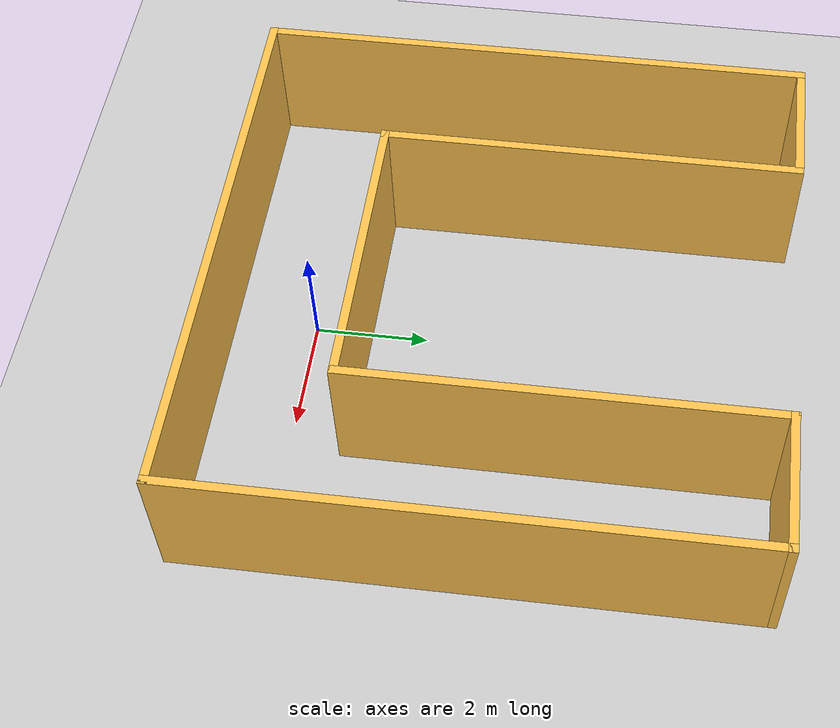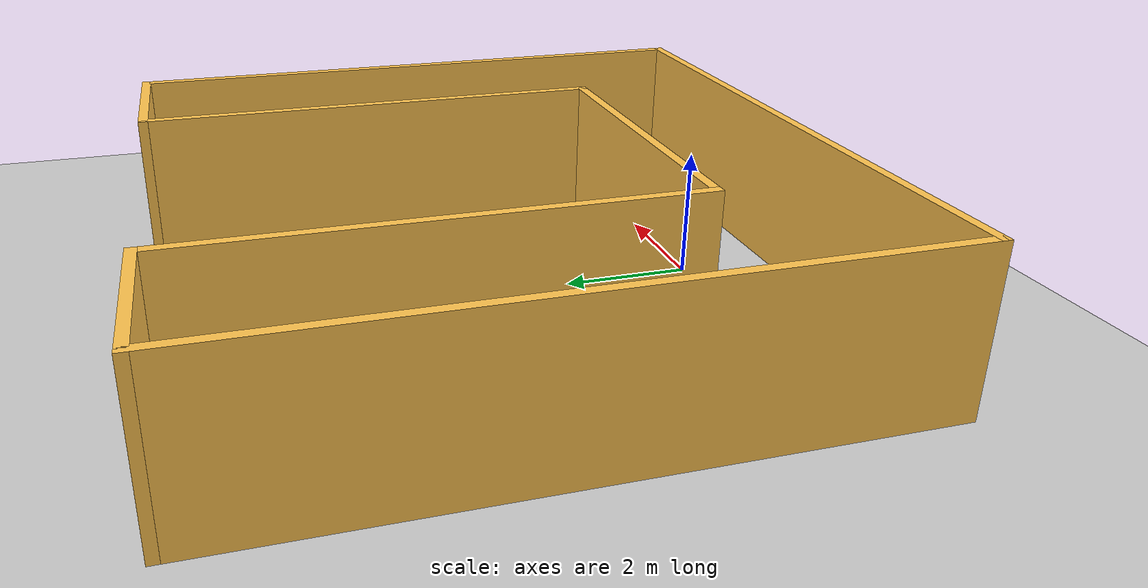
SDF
<sdf version="1.6">
 <world name="default">
  <light name="sun" type="directional">
   <pose>0 0 10 0 -0 0</pose>
   <diffuse>0.8 0.8 0.8 1</diffuse>
   <specular>0.1 0.1 0.1 1</specular>
   <attenuation>
    <range>1000</range>
    <constant>0.9</constant>
    <linear>0.01</linear>
    <quadratic>0.001</quadratic>
   </attenuation>
   <direction>-0.5 0.5 -1</direction>
  </light>
  <model name="ground_plane">
   <static>1</static>
   <link name="link">
    <collision name="collision">
     <geometry><plane><normal>0 0 1</normal><size>100 100</size></plane></geometry>
     <surface><friction><ode><mu>100</mu><mu2>50</mu2></ode></friction></surface>
    </collision>
    <visual name="visual">
     <cast_shadows>0</cast_shadows>
     <geometry><plane><normal>0 0 1</normal><size>100 100</size></plane></geometry>
     <material>
      <script><uri>file://media/materials/scripts/gazebo.material</uri><name>Gazebo/Grey</name></script>
     </material>
    </visual>
   </link>
  </model>
  <gravity>0 0 -9.8</gravity>
  <magnetic_field>6e-06 2.3e-05 -4.2e-05</magnetic_field>
  <atmosphere type="adiabatic"/>
  <physics name="default_physics" default="0" type="ode">
   <max_step_size>0.001</max_step_size>
   <real_time_factor>1</real_time_factor>
   <real_time_update_rate>1000</real_time_update_rate>
  </physics>
  <scene><ambient>0.4 0.4 0.4 1</ambient><background>0.7 0.7 0.7 1</background><shadows>1</shadows></scene>
  <spherical_coordinates>
   <surface_model>EARTH_WGS84</surface_model>
   <latitude_deg>0</latitude_deg>
   <longitude_deg>0</longitude_deg>
   <elevation>0</elevation>
   <heading_deg>0</heading_deg>
  </spherical_coordinates>
  <model name="U_structure">
   <pose>-0.076066 3.36446 0 0 -0 0</pose>
   <link name="Wall_31">
    <collision name="Wall_31_Collision">
     <geometry><box><size>2.5 0.15 2.5</size></box></geometry>
     <pose>0 0 1.25 0 -0 0</pose>
    </collision>
    <visual name="Wall_31_Visual">
     <pose>0 0 1.25 0 -0 0</pose>
     <geometry><box><size>2.5 0.15 2.5</size></box></geometry>
     <material>
      <script><uri>file://media/materials/scripts/gazebo.material</uri><name>Gazebo/Grey</name></script>
      <ambient>1 0.764706 0.305882 1</ambient>
     </material>
    </visual>
    <pose>-3.75 4.925 0 0 -0 0</pose>
   </link>
   <link name="Wall_32">
    <collision name="Wall_32_Collision">
     <geometry><box><size>7.5 0.15 2.5</size></box></geometry>
     <pose>0 0 1.25 0 -0 0</pose>
    </collision>
    <visual name="Wall_32_Visual">
     <pose>0 0 1.25 0 -0 0</pose>
     <geometry><box><size>7.5 0.15 2.5</size></box></geometry>
     <material>
      <script><uri>file://media/materials/scripts/gazebo.material</uri><name>Gazebo/Grey</name></script>
      <ambient>1 0.764706 0.305882 1</ambient>
     </material>
    </visual>
    <pose>-2.575 1.25 0 0 0 -1.5708</pose>
   </link>
   <link name="Wall_34">
    <collision name="Wall_34_Collision">
     <geometry><box><size>5.25 0.15 2.5</size></box></geometry>
     <pose>0 0 1.25 0 -0 0</pose>
    </collision>
    <visual name="Wall_34_Visual">
     <pose>0 0 1.25 0 -0 0</pose>
     <geometry><box><size>5.25 0.15 2.5</size></box></geometry>
     <material>
      <script><uri>file://media/materials/scripts/gazebo.material</uri><name>Gazebo/Grey</name></script>
      <ambient>1 0.764706 0.305882 1</ambient>
     </material>
    </visual>
    <pose>-0.025 -2.425 0 0 -0 0</pose>
   </link>
   <link name="Wall_23">
    <collision name="Wall_3_Collision">
     <geometry><box><size>10 0.15 2.5</size></box></geometry>
     <pose>0 0 1.25 0 -0 0</pose>
    </collision>
    <visual name="Wall_3_Visual">
     <pose>0 0 1.25 0 -0 0</pose>
     <geometry><box><size>10 0.15 2.5</size></box></geometry>
     <material>
      <script><uri>file://media/materials/scripts/gazebo.material</uri><name>Gazebo/Grey</name></script>
      <ambient>1 0.764706 0.305882 1</ambient>
     </material>
    </visual>
    <pose>-4.925 0 0 0 0 -1.5708</pose>
   </link>
   <link name="Wall_24">
    <collision name="Wall_4_Collision">
     <geometry><box><size>10 0.15 2.5</size></box></geometry>
     <pose>0 0 1.25 0 -0 0</pose>
    </collision>
    <visual name="Wall_4_Visual">
     <pose>0 0 1.25 0 -0 0</pose>
     <geometry><box><size>10 0.15 2.5</size></box></geometry>
     <material>
      <script><uri>file://media/materials/scripts/gazebo.material</uri><name>Gazebo/Grey</name></script>
      <ambient>1 0.764706 0.305882 1</ambient>
     </material>
    </visual>
    <pose>0 -4.925 0 0 -0 0</pose>
   </link>
   <link name="Wall_25">
    <collision name="Wall_5_Collision">
     <geometry><box><size>10 0.15 2.5</size></box></geometry>
     <pose>0 0 1.25 0 -0 0</pose>
    </collision>
    <visual name="Wall_5_Visual">
     <pose>0 0 1.25 0 -0 0</pose>
     <geometry><box><size>10 0.15 2.5</size></box></geometry>
     <material>
      <script><uri>file://media/materials/scripts/gazebo.material</uri><name>Gazebo/Grey</name></script>
      <ambient>1 0.764706 0.305882 1</ambient>
     </material>
    </visual>
    <pose>4.925 0 0 0 -0 1.5708</pose>
   </link>
   <link name="Wall_26">
    <collision name="Wall_6_Collision">
     <geometry><box><size>2.5 0.15 2.5</size></box></geometry>
     <pose>0 0 1.25 0 -0 0</pose>
    </collision>
    <visual name="Wall_6_Visual">
     <pose>0 0 1.25 0 -0 0</pose>
     <geometry><box><size>2.5 0.15 2.5</size></box></geometry>
     <material>
      <script><uri>file://media/materials/scripts/gazebo.material</uri><name>Gazebo/Grey</name></script>
      <ambient>1 0.764706 0.305882 1</ambient>
     </material>
    </visual>
    <pose>3.75 4.925 0 0 -0 3.14159</pose>
   </link>
   <link name="Wall_29">
    <collision name="Wall_7_Collision">
     <geometry><box><size>7.5 0.15 2.5</size></box></geometry>
     <pose>0 0 1.25 0 -0 0</pose>
    </collision>
    <visual name="Wall_7_Visual">
     <pose>0 0 1.25 0 -0 0</pose>
     <geometry><box><size>7.5 0.15 2.5</size></box></geometry>
     <material>
      <script><uri>file://media/materials/scripts/gazebo.material</uri><name>Gazebo/Grey</name></script>
      <ambient>1 0.764706 0.305882 1</ambient>
     </material>
    </visual>
    <pose>2.575 1.25 0 0 0 -1.5708</pose>
   </link>
   <static>1</static>
  </model>
 </world>
</sdf>
